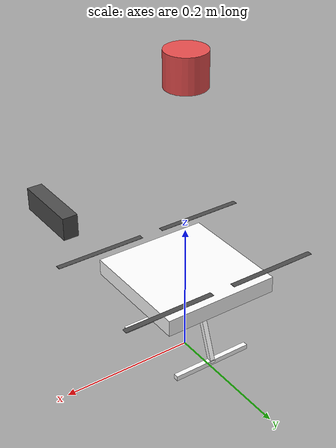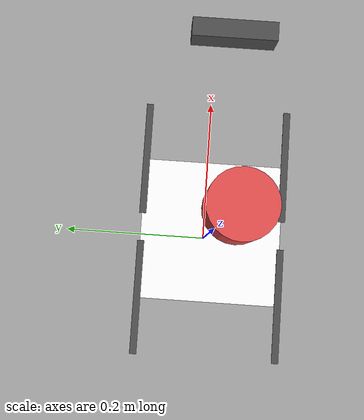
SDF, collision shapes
<sdf version="1.9">
  <model name="x500_depth">

    <!-- 首先包含原始模型 -->
    <include merge="true">
      <uri>file:///home/duke/PX4-Autopilot/Tools/simulation/gz/models/x500_base/model.sdf</uri>
    </include>

    <!-- 添加相机链接 -->
    <link name="camera_link">
      <pose>0.2 0 0.3 0 0 0</pose>  <!-- 使用绝对位置，不指定relative_to -->

      <inertial>
        <mass>0.015</mass>
        <inertia>
          <ixx>0.00001</ixx>
          <iyy>0.00001</iyy>
          <izz>0.00001</izz>
        </inertia>
      </inertial>

      <visual name="camera_visual">
        <geometry>
          <box>
            <size>0.02 0.09 0.03</size>
          </box>
        </geometry>
        <material>
          <ambient>0.2 0.2 0.2 1</ambient>
          <diffuse>0.3 0.3 0.3 1</diffuse>
        </material>
      </visual>

      <collision name="camera_collision">
        <geometry>
          <box>
            <size>0.02 0.09 0.03</size>
          </box>
        </geometry>
      </collision>

      <!-- RGBD相机传感器 -->
      <sensor name="rgbd_camera" type="rgbd_camera">
        <always_on>true</always_on>
        <update_rate>120</update_rate>
        <visualize>true</visualize>
        <topic>camera</topic>

        <!-- 启用时间戳同步 -->
        <enable_metrics>true</enable_metrics>

        <camera>
          <horizontal_fov>1.4</horizontal_fov>

          <!-- RGB图像配置 -->
          <image>
            <width>640</width>
            <height>480</height>
            <format>RGB_INT8</format>
          </image>

          <!-- 深度图像配置 -->
          <depth>
            <width>640</width>
            <height>480</height>
            <format>R_FLOAT32</format>
          </depth>

          <!-- 点云配置 -->
          <point_cloud>
            <enable>true</enable>
          </point_cloud>

          <clip>
            <near>0.1</near>
            <far>100</far>
          </clip>
        </camera>
      </sensor>

      <!-- IMU传感器 - 与相机同链接确保时间戳同步 -->
      <sensor name="imu_sensor" type="imu">
        <always_on>true</always_on>
        <update_rate>200</update_rate>
        <topic>sensor_imu</topic>
        <enable_metrics>true</enable_metrics>

        <imu>
          <angular_velocity>
            <x>
              <noise type="gaussian">
                <mean>0.0</mean>
                <stddev>0.0002</stddev>
                <bias_mean>0.0000075</bias_mean>
                <bias_stddev>0.0000008</bias_stddev>
              </noise>
            </x>
            <y>
              <noise type="gaussian">
                <mean>0.0</mean>
                <stddev>0.0002</stddev>
                <bias_mean>0.0000075</bias_mean>
                <bias_stddev>0.0000008</bias_stddev>
              </noise>
            </y>
            <z>
              <noise type="gaussian">
                <mean>0.0</mean>
                <stddev>0.0002</stddev>
                <bias_mean>0.0000075</bias_mean>
                <bias_stddev>0.0000008</bias_stddev>
              </noise>
            </z>
          </angular_velocity>
          <linear_acceleration>
            <x>
              <noise type="gaussian">
                <mean>0.0</mean>
                <stddev>0.017</stddev>
                <bias_mean>0.1</bias_mean>
                <bias_stddev>0.001</bias_stddev>
              </noise>
            </x>
            <y>
              <noise type="gaussian">
                <mean>0.0</mean>
                <stddev>0.017</stddev>
                <bias_mean>0.1</bias_mean>
                <bias_stddev>0.001</bias_stddev>
              </noise>
            </y>
            <z>
              <noise type="gaussian">
                <mean>0.0</mean>
                <stddev>0.017</stddev>
                <bias_mean>0.1</bias_mean>
                <bias_stddev>0.001</bias_stddev>
              </noise>
            </z>
          </linear_acceleration>
        </imu>
      </sensor>
    </link>

    <!-- 将相机连接到x500的主体上 -->
    <joint name="camera_joint" type="fixed">
      <parent>base_link</parent>
      <child>camera_link</child>
    </joint>

    <!-- 添加雷达传感器链接 - 放在无人机正头顶 -->
    <link name="lidar_sensor_link">
      <!-- 放在无人机正头顶，比相机略高 -->
      <pose>0 0 0.44 0 0 0</pose>  <!-- 无人机正头顶，高度0.44米 -->

      <inertial>
        <mass>0.1</mass>
        <inertia>
          <ixx>0.0001</ixx>
          <iyy>0.0001</iyy>
          <izz>0.0001</izz>
          <ixy>0.0</ixy>
          <ixz>0.0</ixz>
          <iyz>0.0</iyz>
        </inertia>
      </inertial>

      <!-- 雷达可视化 - 更明显的模型 -->
      <visual name="lidar_visual">
        <geometry>
          <cylinder>
            <radius>0.03</radius>
            <length>0.05</length>
          </cylinder>
        </geometry>
        <material>
          <ambient>0.8 0.2 0.2 1</ambient>  <!-- 红色 -->
          <diffuse>0.9 0.3 0.3 1</diffuse>
          <specular>0.1 0.1 0.1 1</specular>
        </material>
      </visual>

      <!-- 添加第二个视觉元素，使雷达更容易看到 -->
      <visual name="lidar_top">
        <pose>0 0 0.025 0 0 0</pose>  <!-- 放在圆柱体顶部 -->
        <geometry>
          <sphere>
            <radius>0.02</radius>
          </sphere>
        </geometry>
        <material>
          <ambient>0.2 0.8 0.2 1</ambient>  <!-- 绿色 -->
          <diffuse>0.3 0.9 0.3 1</diffuse>
        </material>
      </visual>

      <collision name="lidar_collision">
        <geometry>
          <cylinder>
            <radius>0.03</radius>
            <length>0.05</length>
          </cylinder>
        </geometry>
      </collision>
 <!-- 修改雷达传感器配置 -->
  <sensor name='lidar' type='gpu_lidar'>
    <pose>0 0 0 0 0 3.14159</pose>
    <update_rate>120</update_rate>  <!-- 降低频率以减轻处理负担 -->
    <topic>lidar</topic>
    <gz_frame_id>lidar_sensor_link</gz_frame_id>
    <ray>
      <scan>
    <horizontal>
      <samples>360</samples>      <!-- 每度1个采样点 -->
      <resolution>1</resolution>
      <min_angle>-3.14159</min_angle>
      <max_angle>3.14159</max_angle>
    </horizontal>
    <vertical>
      <samples>32</samples>       <!-- 32个垂直激光束 -->
      <resolution>1</resolution>
      <min_angle>-0.335</min_angle>
      <max_angle>0.335</max_angle>
    </vertical>
  </scan>
  <range>
    <min>0.1</min>
    <max>50.0</max>
    <resolution>0.01</resolution>
  </range>
      <noise>
        <type>gaussian</type>
        <mean>0.0</mean>
        <stddev>0.01</stddev>
      </noise>
    </ray>
    <always_on>true</always_on>
    <visualize>true</visualize>
    <enable_metrics>true</enable_metrics>
  </sensor>
    </link>

    <!-- 将雷达连接到x500的主体上 -->
    <joint name="lidar_joint" type="fixed">
      <parent>base_link</parent
    >
      <child>lidar_sensor_link</child>
    </joint>

  </model>
</sdf>
